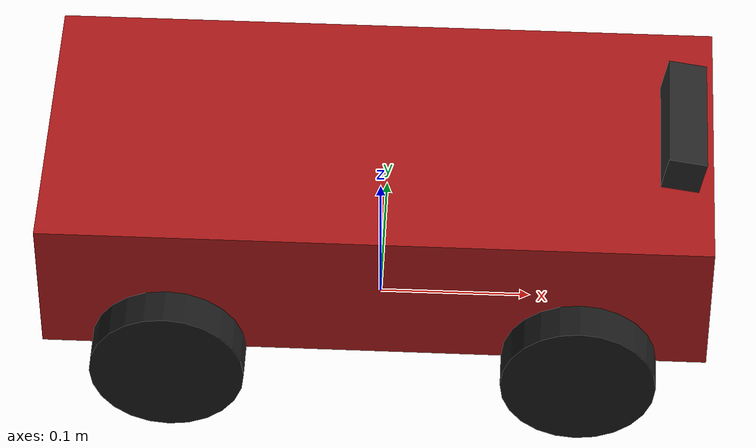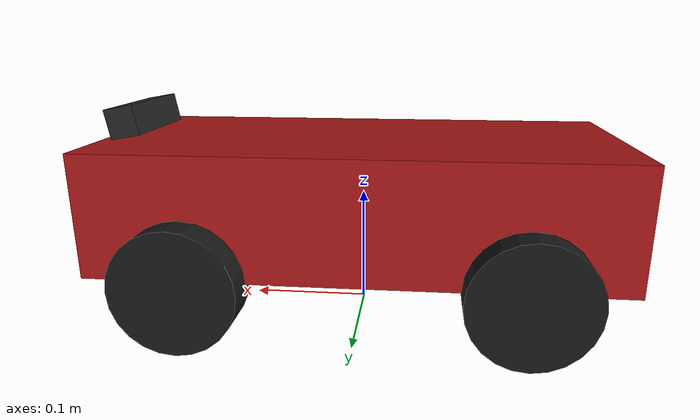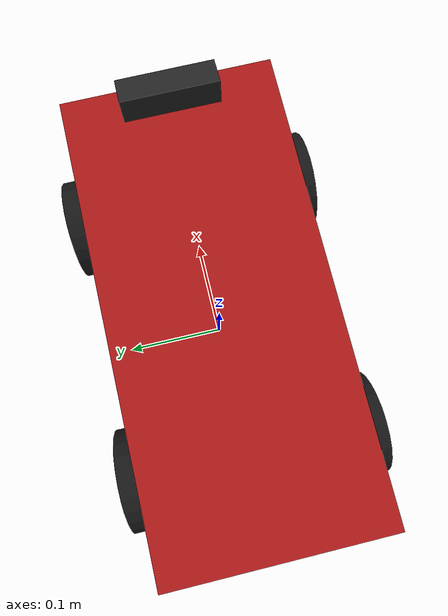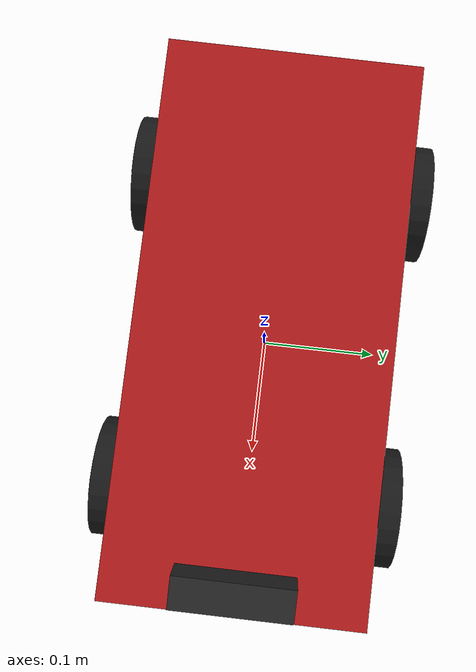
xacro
<?xml version="1.0"?>
<robot xmlns:xacro="http://www.ros.org/wiki/xacro" name="havoc">

  <!-- 1/10 scale ackermann RC car, rough Tamiya-buggy proportions. -->
  <xacro:property name="body_length" value="0.43"/>
  <xacro:property name="body_width"  value="0.20"/>
  <xacro:property name="body_height" value="0.10"/>
  <xacro:property name="body_mass"   value="2.5"/>

  <xacro:property name="wheel_radius" value="0.05"/>
  <xacro:property name="wheel_width"  value="0.04"/>
  <xacro:property name="wheel_mass"   value="0.15"/>

  <xacro:property name="wheelbase" value="0.265"/>
  <xacro:property name="track"     value="0.21"/>

  <!-- Max steering angle: ~30 deg, typical for a 1/10 RC. -->
  <xacro:property name="steer_limit" value="0.524"/>

  <xacro:macro name="box_inertia" params="m x y z">
    <inertial>
      <mass value="${m}"/>
      <inertia ixx="${m*(y*y+z*z)/12.0}" ixy="0" ixz="0"
               iyy="${m*(x*x+z*z)/12.0}" iyz="0"
               izz="${m*(x*x+y*y)/12.0}"/>
    </inertial>
  </xacro:macro>

  <xacro:macro name="cyl_inertia" params="m r l">
    <inertial>
      <mass value="${m}"/>
      <inertia ixx="${m*(3*r*r+l*l)/12.0}" ixy="0" ixz="0"
               iyy="${m*(3*r*r+l*l)/12.0}" iyz="0"
               izz="${m*r*r/2.0}"/>
    </inertial>
  </xacro:macro>

  <xacro:macro name="wheel_visual_collision">
    <visual>
      <origin rpy="1.5708 0 0"/>
      <geometry><cylinder radius="${wheel_radius}" length="${wheel_width}"/></geometry>
      <material name="black"><color rgba="0.1 0.1 0.1 1"/></material>
    </visual>
    <collision>
      <origin rpy="1.5708 0 0"/>
      <geometry><cylinder radius="${wheel_radius}" length="${wheel_width}"/></geometry>
    </collision>
  </xacro:macro>

  <!-- Rear (driven) wheel: continuous joint attached directly to base_link. -->
  <xacro:macro name="wheel" params="name x y">
    <link name="${name}_link">
      <xacro:wheel_visual_collision/>
      <xacro:cyl_inertia m="${wheel_mass}" r="${wheel_radius}" l="${wheel_width}"/>
    </link>
    <joint name="${name}_joint" type="continuous">
      <parent link="base_link"/>
      <child  link="${name}_link"/>
      <origin xyz="${x} ${y} ${wheel_radius}"/>
      <axis xyz="0 1 0"/>
    </joint>
  </xacro:macro>

  <!-- Front (steered) wheel: kingpin link + revolute steer joint + continuous wheel joint. -->
  <xacro:macro name="steered_wheel" params="name x y">
    <link name="${name}_steer_link">
      <inertial>
        <mass value="0.05"/>
        <inertia ixx="1e-5" ixy="0" ixz="0" iyy="1e-5" iyz="0" izz="1e-5"/>
      </inertial>
    </link>
    <joint name="${name}_steer_joint" type="revolute">
      <parent link="base_link"/>
      <child  link="${name}_steer_link"/>
      <origin xyz="${x} ${y} ${wheel_radius}"/>
      <axis xyz="0 0 1"/>
      <limit lower="${-steer_limit}" upper="${steer_limit}" effort="2.0" velocity="3.0"/>
    </joint>

    <link name="${name}_link">
      <xacro:wheel_visual_collision/>
      <xacro:cyl_inertia m="${wheel_mass}" r="${wheel_radius}" l="${wheel_width}"/>
    </link>
    <joint name="${name}_joint" type="continuous">
      <parent link="${name}_steer_link"/>
      <child  link="${name}_link"/>
      <origin xyz="0 0 0"/>
      <axis xyz="0 1 0"/>
    </joint>
  </xacro:macro>

  <link name="base_footprint"/>
  <joint name="base_footprint_joint" type="fixed">
    <parent link="base_footprint"/>
    <child  link="base_link"/>
    <origin xyz="0 0 0"/>
  </joint>

  <link name="base_link">
    <visual>
      <origin xyz="0 0 ${wheel_radius + body_height/2.0}"/>
      <geometry><box size="${body_length} ${body_width} ${body_height}"/></geometry>
      <material name="red"><color rgba="0.7 0.1 0.1 1"/></material>
    </visual>
    <collision>
      <origin xyz="0 0 ${wheel_radius + body_height/2.0}"/>
      <geometry><box size="${body_length} ${body_width} ${body_height}"/></geometry>
    </collision>
    <xacro:box_inertia m="${body_mass}" x="${body_length}" y="${body_width}" z="${body_height}"/>
  </link>

  <xacro:steered_wheel name="front_left"  x="${ wheelbase/2.0}" y="${ track/2.0}"/>
  <xacro:steered_wheel name="front_right" x="${ wheelbase/2.0}" y="${-track/2.0}"/>
  <xacro:wheel         name="rear_left"   x="${-wheelbase/2.0}" y="${ track/2.0}"/>
  <xacro:wheel         name="rear_right"  x="${-wheelbase/2.0}" y="${-track/2.0}"/>

  <xacro:property name="camera_x"    value="${body_length/2.0 - 0.02}"/>
  <xacro:property name="camera_z"    value="${wheel_radius + body_height + 0.015}"/>
  <xacro:property name="camera_tilt" value="0.175"/>  <!-- ~10 deg down -->

  <link name="camera_link">
    <inertial>
      <mass value="0.05"/>
      <inertia ixx="1e-5" ixy="0" ixz="0" iyy="1e-5" iyz="0" izz="1e-5"/>
    </inertial>
    <visual>
      <geometry><box size="0.025 0.09 0.025"/></geometry>
      <material name="dark_grey"><color rgba="0.15 0.15 0.15 1"/></material>
    </visual>
  </link>
  <joint name="camera_joint" type="fixed">
    <parent link="base_link"/>
    <child  link="camera_link"/>
    <origin xyz="${camera_x} 0 ${camera_z}" rpy="0 ${camera_tilt} 0"/>
  </joint>

  <link name="camera_optical_link"/>
  <joint name="camera_optical_joint" type="fixed">
    <parent link="camera_link"/>
    <child  link="camera_optical_link"/>
    <origin xyz="0 0 0" rpy="${-pi/2} 0 ${-pi/2}"/>
  </joint>

  <gazebo reference="camera_link">
    <sensor name="rgbd_camera" type="rgbd_camera">
      <camera>
        <horizontal_fov>1.21</horizontal_fov>  <!-- ~69 deg, D435i RGB FOV -->
        <image>
          <width>640</width>
          <height>480</height>
          <format>R8G8B8</format>
        </image>
        <clip>
          <near>0.1</near>
          <far>10.0</far>
        </clip>
        <optical_frame_id>camera_optical_link</optical_frame_id>
      </camera>
      <always_on>1</always_on>
      <update_rate>30</update_rate>
      <visualize>true</visualize>
      <topic>camera</topic>
      <gz_frame_id>camera_optical_link</gz_frame_id>
    </sensor>
  </gazebo>

  <link name="imu_link">
    <inertial>
      <mass value="0.01"/>
      <inertia ixx="1e-6" ixy="0" ixz="0" iyy="1e-6" iyz="0" izz="1e-6"/>
    </inertial>
  </link>
  <joint name="imu_joint" type="fixed">
    <parent link="base_link"/>
    <child  link="imu_link"/>
    <origin xyz="0 0 ${wheel_radius + body_height/2.0}"/>
  </joint>

  <gazebo reference="imu_link">
    <sensor name="imu_sensor" type="imu">
      <always_on>1</always_on>
      <update_rate>200</update_rate>
      <visualize>true</visualize>
      <topic>imu</topic>
      <gz_frame_id>imu_link</gz_frame_id>
    </sensor>
  </gazebo>

  <gazebo>
    <plugin filename="gz-sim-ackermann-steering-system"
            name="gz::sim::systems::AckermannSteering">
      <left_joint>rear_left_joint</left_joint>
      <right_joint>rear_right_joint</right_joint>
      <left_steering_joint>front_left_steer_joint</left_steering_joint>
      <right_steering_joint>front_right_steer_joint</right_steering_joint>
      <kingpin_width>${track}</kingpin_width>
      <steering_limit>${steer_limit}</steering_limit>
      <wheel_base>${wheelbase}</wheel_base>
      <wheel_separation>${track}</wheel_separation>
      <wheel_radius>${wheel_radius}</wheel_radius>
      <topic>cmd_vel</topic>

      <!-- Odometry output. SLAM needs odom in a planar footprint frame. -->
      <odom_topic>odom</odom_topic>
      <tf_topic>tf</tf_topic>
      <frame_id>odom</frame_id>
      <child_frame_id>base_footprint</child_frame_id>
      <odom_publish_frequency>50</odom_publish_frequency>
    </plugin>
  </gazebo>

  <gazebo>
    <plugin filename="gz-sim-joint-state-publisher-system"
            name="gz::sim::systems::JointStatePublisher">
      <topic>joint_states</topic>
    </plugin>
  </gazebo>

</robot>
